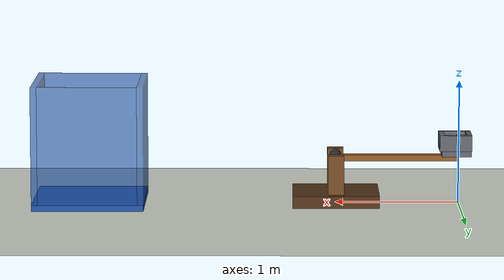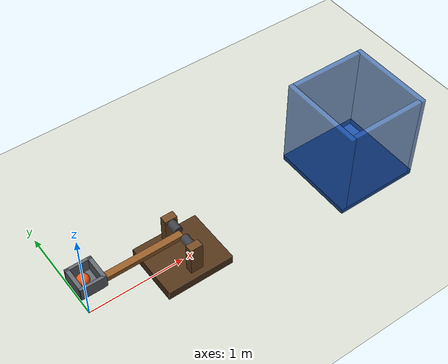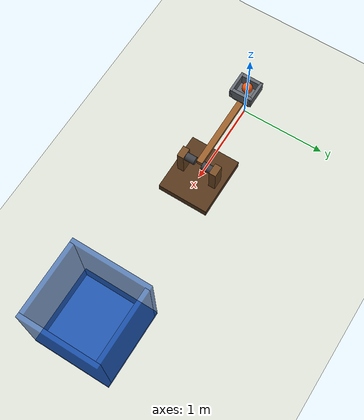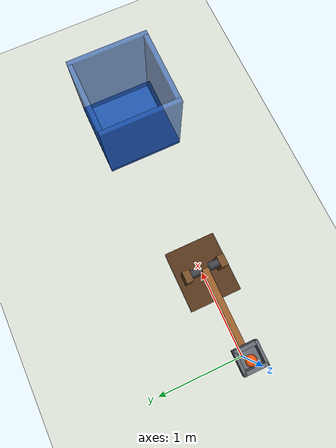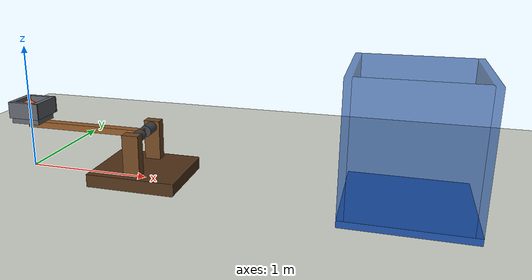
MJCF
<mujoco model="catapult_into_bucket">
  <compiler angle="radian" inertiafromgeom="true"/>
  <option timestep="0.002" gravity="0 0 -9.81" integrator="implicitfast" solver="Newton" iterations="100" tolerance="1e-10"/>
  <size njmax="200" nconmax="100"/>

  <visual>
    <global azimuth="135" elevation="-20"/>
  </visual>

  <worldbody>
    <light name="overhead" pos="1.5 -2 5" dir="0 0 -1" diffuse="0.9 0.9 0.9"/>
    <camera name="overview" pos="1.5 -6 3.2" xyaxes="1 0 0 0 0.45 0.893"/>
    <geom name="floor" type="plane" pos="1.5 0 0" size="6 3 0.1" friction="0.8 0.01 0.001" rgba="0.82 0.84 0.80 1"/>

    <body name="catapult_frame" pos="1 0 0">
      <geom name="catapult_base" type="box" pos="0 0 0.05" size="0.35 0.30 0.05" rgba="0.32 0.20 0.10 1"/>
      <geom name="catapult_support_left" type="box" pos="0 -0.20 0.235" size="0.065 0.04 0.185" rgba="0.45 0.29 0.14 1"/>
      <geom name="catapult_support_right" type="box" pos="0 0.20 0.235" size="0.065 0.04 0.185" rgba="0.45 0.29 0.14 1"/>
      <geom name="catapult_axle_left" type="cylinder" fromto="0 -0.16 0.37 0 -0.045 0.37" size="0.045" rgba="0.24 0.25 0.27 1"/>
      <geom name="catapult_axle_right" type="cylinder" fromto="0 0.045 0.37 0 0.16 0.37" size="0.045" rgba="0.24 0.25 0.27 1"/>

      <body name="catapult_arm" pos="0 0 0.37">
        <joint name="catapult_hinge" type="hinge" axis="0 1 0" limited="true" range="0 0.7853981634" damping="0" frictionloss="0" solreflimit="0.006 1" solimplimit="0.99 0.99 0.001"/>
        <geom name="catapult_beam" type="box" pos="-0.5 0 0" size="0.5 0.035 0.025" mass="0.70" condim="1" friction="0 0 0" solref="0.006 1" rgba="0.58 0.36 0.16 1"/>
        <geom name="catapult_cup_floor" type="box" pos="-0.98 0 0.045" size="0.12 0.105 0.025" mass="0.15" condim="1" friction="0 0 0" solref="0.006 1" rgba="0.38 0.40 0.43 1"/>
        <geom name="catapult_cup_back" type="box" pos="-1.08 0 0.135" size="0.02 0.125 0.065" mass="0.04" condim="1" friction="0 0 0" solref="0.006 1" rgba="0.38 0.40 0.43 1"/>
        <geom name="catapult_cup_front" type="box" pos="-0.86 0 0.135" size="0.02 0.125 0.065" mass="0.04" condim="1" friction="0 0 0" solref="0.006 1" rgba="0.38 0.40 0.43 1"/>
        <geom name="catapult_cup_left" type="box" pos="-0.97 -0.12 0.135" size="0.13 0.015 0.065" mass="0.035" condim="1" friction="0 0 0" solref="0.006 1" rgba="0.38 0.40 0.43 1"/>
        <geom name="catapult_cup_right" type="box" pos="-0.97 0.12 0.135" size="0.13 0.015 0.065" mass="0.035" condim="1" friction="0 0 0" solref="0.006 1" rgba="0.38 0.40 0.43 1"/>
      </body>
    </body>

    <body name="ball" pos="0 0 0.5">
      <freejoint name="ball_free"/>
      <geom name="ball" type="sphere" size="0.06" mass="0.10" condim="1" friction="0 0 0" solref="0.006 1" rgba="0.95 0.35 0.08 1"/>
    </body>

    <!-- Open square bucket, centred exactly 3 m from the initial ball centre. -->
    <body name="bucket" pos="3 0 0.5">
      <geom name="bucket_bottom" type="box" pos="0 0 -0.475" size="0.45 0.45 0.025" condim="3" friction="0.9 0.01 0.001" solref="0.015 1" rgba="0.12 0.32 0.65 1"/>
      <geom name="bucket_front" type="box" pos="-0.425 0 0.025" size="0.025 0.45 0.475" condim="3" friction="0.9 0.01 0.001" solref="0.015 1" rgba="0.12 0.32 0.65 0.65"/>
      <geom name="bucket_back" type="box" pos="0.425 0 0.025" size="0.025 0.45 0.475" condim="3" friction="0.9 0.01 0.001" solref="0.015 1" rgba="0.12 0.32 0.65 0.65"/>
      <geom name="bucket_left" type="box" pos="0 -0.425 0.025" size="0.40 0.025 0.475" condim="3" friction="0.9 0.01 0.001" solref="0.015 1" rgba="0.12 0.32 0.65 0.65"/>
      <geom name="bucket_right" type="box" pos="0 0.425 0.025" size="0.40 0.025 0.475" condim="3" friction="0.9 0.01 0.001" solref="0.015 1" rgba="0.12 0.32 0.65 0.65"/>
    </body>
  </worldbody>

  <actuator>
    <motor name="catapult_drive" joint="catapult_hinge" gear="1" ctrllimited="true" ctrlrange="0 15.8"/>
  </actuator>

  <keyframe>
    <key name="start" qpos="0 0 0 0.5 1 0 0 0" qvel="0 0 0 0 0 0 0" ctrl="15.8"/>
  </keyframe>
</mujoco>
